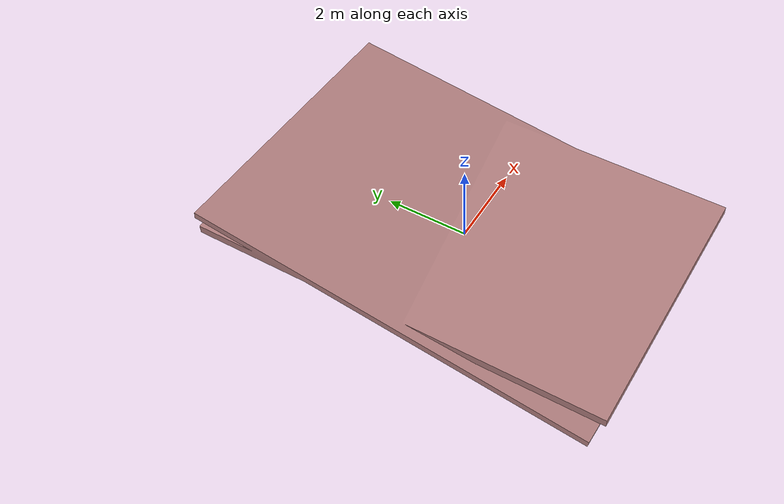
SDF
<?xml version="1.0" encoding="UTF-8" ?>
<sdf version="1.4">
  <world name="default">
    <scene>
      <background>0.1 0.1 0.1 1</background>
      <shadows>true</shadows>
    </scene>

    <physics type="ode">
      <gravity>0 0 -9.81</gravity>
      <ode>
        <solver>
          <type>quick</type>
          <iters>10</iters>
          <sor>1.3</sor>
        </solver>
        <constraints>
          <cfm>0.0</cfm>
          <erp>0.2</erp>
          <contact_max_correcting_vel>10</contact_max_correcting_vel>
          <contact_surface_layer>0.001</contact_surface_layer>
        </constraints>
      </ode>
      <max_step_size>0.001</max_step_size>
    </physics>

    <light type="directional" name="directional_light_1">
      <pose>0 20 20 0.1 0.1 0</pose>
      <diffuse>1 1 1 1</diffuse>
      <specular>1 1 1 1</specular>
      <attenuation>
        <range>300</range>
      </attenuation>
      <direction>0.1 0.1 -1</direction>
      <cast_shadows>false</cast_shadows>
    </light>

    <include>
      <uri>model://ramps</uri>
      <scale>0.01 0.01 0.01</scale>
    </include>

  </world>
</sdf>

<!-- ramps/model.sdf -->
<sdf version="1.6">
  <model name="steep_ramp">
    <static>true</static>
    <link name="steep_ramp">
      <pose>0 0 0.5 0 0 1.57</pose>
      <collision name="steep_ramp">
        <geometry>
          <mesh>
            <scale>0.5 0.5 0.5</scale>
            <uri>model://ramps/ramp.dae</uri>
          </mesh>
        </geometry>
      </collision>
      <visual name="steep_ramp">
        <geometry>
          <mesh>
            <scale>0.5 0.5 0.5</scale>
            <uri>model://ramps/ramp.dae</uri>
          </mesh>
        </geometry>
        <cast_shadows>false</cast_shadows>
        <material>
          <ambient>0.5 0.3 0.3 1</ambient>
          <diffuse>0.7 0.5 0.5 1</diffuse>
          <specular>0.7 0.5 0.5 1</specular>
          <emissive>0 0 0 1</emissive>
        </material>
      </visual>
    </link>
  </model>
</sdf>
